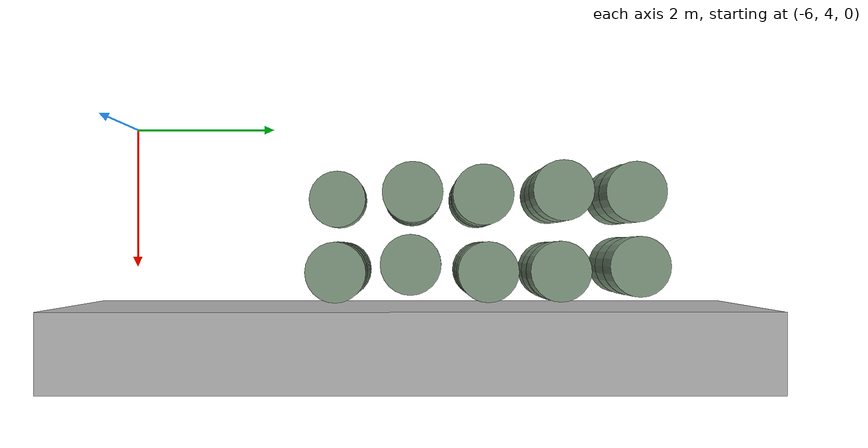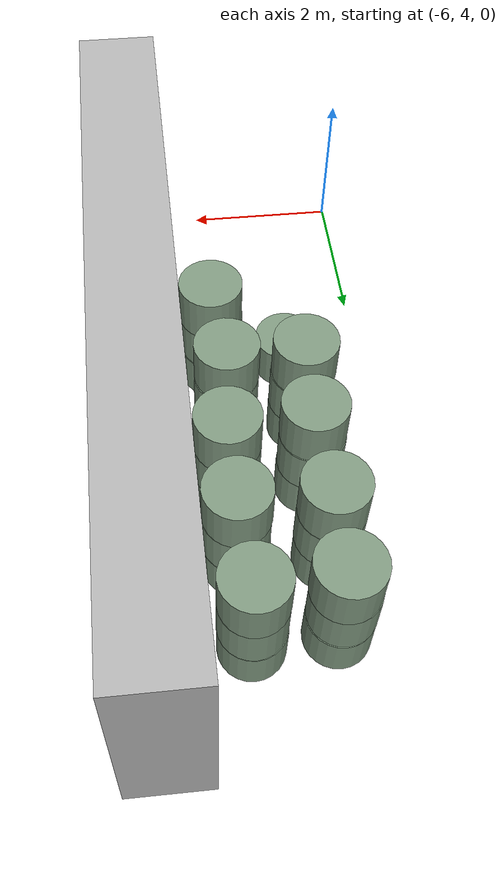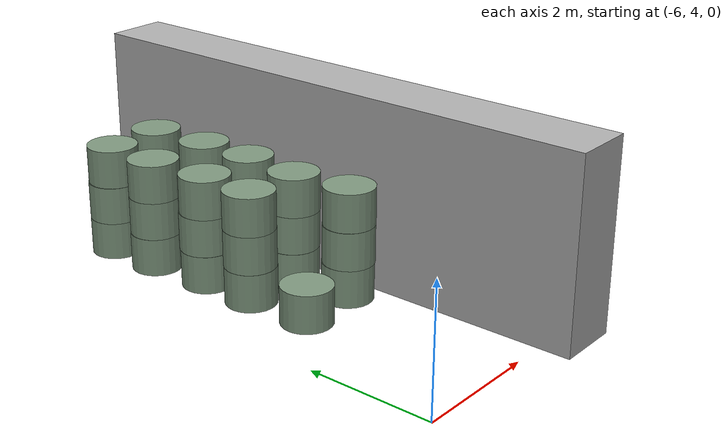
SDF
<sdf version="1.6">
 <world name="default">
  <model name="wall_3">
   <pose frame="sim_world">-3.0 8.0 1.5 0 0 0</pose>
   <static>True</static>
   <link name="wall_3_link">
    <inertial>
     <mass>100</mass>
     <inertia>
      <ixx>0.166667</ixx>
      <ixy>0</ixy>
      <ixz>0</ixz>
      <iyy>0.166667</iyy>
      <iyz>0</iyz>
      <izz>0.166667</izz>
     </inertia>
    </inertial>
    <collision name="wall_3_collision">
     <geometry><box><size>1.0 9.0 3.0</size></box></geometry>
     <max_contacts>100</max_contacts>
    </collision>
    <visual name="wall_3_visual">
     <geometry><box><size>1.0 9.0 3.0</size></box></geometry>
     <material><ambient>0.7 0.7 0.7 1</ambient><diffuse>0.7 0.7 0.7 1</diffuse></material>
    </visual>
   </link>
  </model>
  <model name="cylinder_81">
   <pose frame="sim_world">-4.9603061503 6.96653866494 0.3 0 -0 0</pose>
   <static>True</static>
   <link name="cylinder_81_link">
    <inertial>
     <mass>100</mass>
     <inertia><ixx>0.145833</ixx><ixy>0</ixy><ixz>0</ixz><iyy>0.145833</iyy><iyz>0</iyz><izz>0.125</izz></inertia>
    </inertial>
    <collision name="cylinder_81_collision">
     <geometry><cylinder><length>0.6</length><radius>0.4</radius></cylinder></geometry>
     <max_contacts>100</max_contacts>
    </collision>
    <visual name="cylinder_81_visual">
     <geometry><cylinder><length>0.6</length><radius>0.4</radius></cylinder></geometry>
     <material><ambient>0.5 0.6 0.5 1</ambient><diffuse>0.5 0.6 0.5 1</diffuse></material>
    </visual>
   </link>
  </model>
  <model name="cylinder_84">
   <pose frame="sim_world">-4.99042980781 8.02958762259 0.3 0 -0 0</pose>
   <static>True</static>
   <link name="cylinder_84_link">
    <inertial>
     <mass>100</mass>
     <inertia><ixx>0.145833</ixx><ixy>0</ixy><ixz>0</ixz><iyy>0.145833</iyy><iyz>0</iyz><izz>0.125</izz></inertia>
    </inertial>
    <collision name="cylinder_84_collision">
     <geometry><cylinder><length>0.6</length><radius>0.4</radius></cylinder></geometry>
     <max_contacts>100</max_contacts>
    </collision>
    <visual name="cylinder_84_visual">
     <geometry><cylinder><length>0.6</length><radius>0.4</radius></cylinder></geometry>
     <material><ambient>0.5 0.6 0.5 1</ambient><diffuse>0.5 0.6 0.5 1</diffuse></material>
    </visual>
   </link>
  </model>
  <model name="cylinder_85">
   <pose frame="sim_world">-4.99214448029 8.03540983763 0.9 0 -0 0</pose>
   <static>True</static>
   <link name="cylinder_85_link">
    <inertial>
     <mass>100</mass>
     <inertia><ixx>0.145833</ixx><ixy>0</ixy><ixz>0</ixz><iyy>0.145833</iyy><iyz>0</iyz><izz>0.125</izz></inertia>
    </inertial>
    <collision name="cylinder_85_collision">
     <geometry><cylinder><length>0.6</length><radius>0.4</radius></cylinder></geometry>
     <max_contacts>100</max_contacts>
    </collision>
    <visual name="cylinder_85_visual">
     <geometry><cylinder><length>0.6</length><radius>0.4</radius></cylinder></geometry>
     <material><ambient>0.5 0.6 0.5 1</ambient><diffuse>0.5 0.6 0.5 1</diffuse></material>
    </visual>
   </link>
  </model>
  <model name="cylinder_86">
   <pose frame="sim_world">-5.00142174995 8.02967293043 1.5 0 -0 0</pose>
   <static>True</static>
   <link name="cylinder_86_link">
    <inertial>
     <mass>100</mass>
     <inertia><ixx>0.145833</ixx><ixy>0</ixy><ixz>0</ixz><iyy>0.145833</iyy><iyz>0</iyz><izz>0.125</izz></inertia>
    </inertial>
    <collision name="cylinder_86_collision">
     <geometry><cylinder><length>0.6</length><radius>0.4</radius></cylinder></geometry>
     <max_contacts>100</max_contacts>
    </collision>
    <visual name="cylinder_86_visual">
     <geometry><cylinder><length>0.6</length><radius>0.4</radius></cylinder></geometry>
     <material><ambient>0.5 0.6 0.5 1</ambient><diffuse>0.5 0.6 0.5 1</diffuse></material>
    </visual>
   </link>
  </model>
  <model name="cylinder_87">
   <pose frame="sim_world">-4.96395935713 8.96027865286 0.3 0 -0 0</pose>
   <static>True</static>
   <link name="cylinder_87_link">
    <inertial>
     <mass>100</mass>
     <inertia><ixx>0.145833</ixx><ixy>0</ixy><ixz>0</ixz><iyy>0.145833</iyy><iyz>0</iyz><izz>0.125</izz></inertia>
    </inertial>
    <collision name="cylinder_87_collision">
     <geometry><cylinder><length>0.6</length><radius>0.4</radius></cylinder></geometry>
     <max_contacts>100</max_contacts>
    </collision>
    <visual name="cylinder_87_visual">
     <geometry><cylinder><length>0.6</length><radius>0.4</radius></cylinder></geometry>
     <material><ambient>0.5 0.6 0.5 1</ambient><diffuse>0.5 0.6 0.5 1</diffuse></material>
    </visual>
   </link>
  </model>
  <model name="cylinder_88">
   <pose frame="sim_world">-4.96952828208 8.9711625489 0.9 0 -0 0</pose>
   <static>True</static>
   <link name="cylinder_88_link">
    <inertial>
     <mass>100</mass>
     <inertia><ixx>0.145833</ixx><ixy>0</ixy><ixz>0</ixz><iyy>0.145833</iyy><iyz>0</iyz><izz>0.125</izz></inertia>
    </inertial>
    <collision name="cylinder_88_collision">
     <geometry><cylinder><length>0.6</length><radius>0.4</radius></cylinder></geometry>
     <max_contacts>100</max_contacts>
    </collision>
    <visual name="cylinder_88_visual">
     <geometry><cylinder><length>0.6</length><radius>0.4</radius></cylinder></geometry>
     <material><ambient>0.5 0.6 0.5 1</ambient><diffuse>0.5 0.6 0.5 1</diffuse></material>
    </visual>
   </link>
  </model>
  <model name="cylinder_89">
   <pose frame="sim_world">-4.96785070713 8.95520015383 1.5 0 -0 0</pose>
   <static>True</static>
   <link name="cylinder_89_link">
    <inertial>
     <mass>100</mass>
     <inertia><ixx>0.145833</ixx><ixy>0</ixy><ixz>0</ixz><iyy>0.145833</iyy><iyz>0</iyz><izz>0.125</izz></inertia>
    </inertial>
    <collision name="cylinder_89_collision">
     <geometry><cylinder><length>0.6</length><radius>0.4</radius></cylinder></geometry>
     <max_contacts>100</max_contacts>
    </collision>
    <visual name="cylinder_89_visual">
     <geometry><cylinder><length>0.6</length><radius>0.4</radius></cylinder></geometry>
     <material><ambient>0.5 0.6 0.5 1</ambient><diffuse>0.5 0.6 0.5 1</diffuse></material>
    </visual>
   </link>
  </model>
  <model name="cylinder_90">
   <pose frame="sim_world">-5.02586074198 10.0094093663 0.3 0 -0 0</pose>
   <static>True</static>
   <link name="cylinder_90_link">
    <inertial>
     <mass>100</mass>
     <inertia><ixx>0.145833</ixx><ixy>0</ixy><ixz>0</ixz><iyy>0.145833</iyy><iyz>0</iyz><izz>0.125</izz></inertia>
    </inertial>
    <collision name="cylinder_90_collision">
     <geometry><cylinder><length>0.6</length><radius>0.4</radius></cylinder></geometry>
     <max_contacts>100</max_contacts>
    </collision>
    <visual name="cylinder_90_visual">
     <geometry><cylinder><length>0.6</length><radius>0.4</radius></cylinder></geometry>
     <material><ambient>0.5 0.6 0.5 1</ambient><diffuse>0.5 0.6 0.5 1</diffuse></material>
    </visual>
   </link>
  </model>
  <model name="cylinder_91">
   <pose frame="sim_world">-5.02139907157 10.0067929229 0.9 0 -0 0</pose>
   <static>True</static>
   <link name="cylinder_91_link">
    <inertial>
     <mass>100</mass>
     <inertia><ixx>0.145833</ixx><ixy>0</ixy><ixz>0</ixz><iyy>0.145833</iyy><iyz>0</iyz><izz>0.125</izz></inertia>
    </inertial>
    <collision name="cylinder_91_collision">
     <geometry><cylinder><length>0.6</length><radius>0.4</radius></cylinder></geometry>
     <max_contacts>100</max_contacts>
    </collision>
    <visual name="cylinder_91_visual">
     <geometry><cylinder><length>0.6</length><radius>0.4</radius></cylinder></geometry>
     <material><ambient>0.5 0.6 0.5 1</ambient><diffuse>0.5 0.6 0.5 1</diffuse></material>
    </visual>
   </link>
  </model>
  <model name="cylinder_92">
   <pose frame="sim_world">-5.02329839927 10.0050397006 1.5 0 -0 0</pose>
   <static>True</static>
   <link name="cylinder_92_link">
    <inertial>
     <mass>100</mass>
     <inertia><ixx>0.145833</ixx><ixy>0</ixy><ixz>0</ixz><iyy>0.145833</iyy><iyz>0</iyz><izz>0.125</izz></inertia>
    </inertial>
    <collision name="cylinder_92_collision">
     <geometry><cylinder><length>0.6</length><radius>0.4</radius></cylinder></geometry>
     <max_contacts>100</max_contacts>
    </collision>
    <visual name="cylinder_92_visual">
     <geometry><cylinder><length>0.6</length><radius>0.4</radius></cylinder></geometry>
     <material><ambient>0.5 0.6 0.5 1</ambient><diffuse>0.5 0.6 0.5 1</diffuse></material>
    </visual>
   </link>
  </model>
  <model name="cylinder_93">
   <pose frame="sim_world">-5.00811001362 10.9638394035 0.3 0 -0 0</pose>
   <static>True</static>
   <link name="cylinder_93_link">
    <inertial>
     <mass>100</mass>
     <inertia><ixx>0.145833</ixx><ixy>0</ixy><ixz>0</ixz><iyy>0.145833</iyy><iyz>0</iyz><izz>0.125</izz></inertia>
    </inertial>
    <collision name="cylinder_93_collision">
     <geometry><cylinder><length>0.6</length><radius>0.4</radius></cylinder></geometry>
     <max_contacts>100</max_contacts>
    </collision>
    <visual name="cylinder_93_visual">
     <geometry><cylinder><length>0.6</length><radius>0.4</radius></cylinder></geometry>
     <material><ambient>0.5 0.6 0.5 1</ambient><diffuse>0.5 0.6 0.5 1</diffuse></material>
    </visual>
   </link>
  </model>
  <model name="cylinder_94">
   <pose frame="sim_world">-5.01562472278 10.9535481426 0.9 0 -0 0</pose>
   <static>True</static>
   <link name="cylinder_94_link">
    <inertial>
     <mass>100</mass>
     <inertia><ixx>0.145833</ixx><ixy>0</ixy><ixz>0</ixz><iyy>0.145833</iyy><iyz>0</iyz><izz>0.125</izz></inertia>
    </inertial>
    <collision name="cylinder_94_collision">
     <geometry><cylinder><length>0.6</length><radius>0.4</radius></cylinder></geometry>
     <max_contacts>100</max_contacts>
    </collision>
    <visual name="cylinder_94_visual">
     <geometry><cylinder><length>0.6</length><radius>0.4</radius></cylinder></geometry>
     <material><ambient>0.5 0.6 0.5 1</ambient><diffuse>0.5 0.6 0.5 1</diffuse></material>
    </visual>
   </link>
  </model>
  <model name="cylinder_95">
   <pose frame="sim_world">-5.00296457537 10.9558457434 1.5 0 -0 0</pose>
   <static>True</static>
   <link name="cylinder_95_link">
    <inertial>
     <mass>100</mass>
     <inertia><ixx>0.145833</ixx><ixy>0</ixy><ixz>0</ixz><iyy>0.145833</iyy><iyz>0</iyz><izz>0.125</izz></inertia>
    </inertial>
    <collision name="cylinder_95_collision">
     <geometry><cylinder><length>0.6</length><radius>0.4</radius></cylinder></geometry>
     <max_contacts>100</max_contacts>
    </collision>
    <visual name="cylinder_95_visual">
     <geometry><cylinder><length>0.6</length><radius>0.4</radius></cylinder></geometry>
     <material><ambient>0.5 0.6 0.5 1</ambient><diffuse>0.5 0.6 0.5 1</diffuse></material>
    </visual>
   </link>
  </model>
  <model name="cylinder_123">
   <pose frame="sim_world">-3.95838101689 7.0306150573 0.3 0 -0 0</pose>
   <static>True</static>
   <link name="cylinder_123_link">
    <inertial>
     <mass>100</mass>
     <inertia><ixx>0.145833</ixx><ixy>0</ixy><ixz>0</ixz><iyy>0.145833</iyy><iyz>0</iyz><izz>0.125</izz></inertia>
    </inertial>
    <collision name="cylinder_123_collision">
     <geometry><cylinder><length>0.6</length><radius>0.4</radius></cylinder></geometry>
     <max_contacts>100</max_contacts>
    </collision>
    <visual name="cylinder_123_visual">
     <geometry><cylinder><length>0.6</length><radius>0.4</radius></cylinder></geometry>
     <material><ambient>0.5 0.6 0.5 1</ambient><diffuse>0.5 0.6 0.5 1</diffuse></material>
    </visual>
   </link>
  </model>
  <model name="cylinder_124">
   <pose frame="sim_world">-3.95784734797 7.01696593172 0.9 0 -0 0</pose>
   <static>True</static>
   <link name="cylinder_124_link">
    <inertial>
     <mass>100</mass>
     <inertia><ixx>0.145833</ixx><ixy>0</ixy><ixz>0</ixz><iyy>0.145833</iyy><iyz>0</iyz><izz>0.125</izz></inertia>
    </inertial>
    <collision name="cylinder_124_collision">
     <geometry><cylinder><length>0.6</length><radius>0.4</radius></cylinder></geometry>
     <max_contacts>100</max_contacts>
    </collision>
    <visual name="cylinder_124_visual">
     <geometry><cylinder><length>0.6</length><radius>0.4</radius></cylinder></geometry>
     <material><ambient>0.5 0.6 0.5 1</ambient><diffuse>0.5 0.6 0.5 1</diffuse></material>
    </visual>
   </link>
  </model>
  <model name="cylinder_125">
   <pose frame="sim_world">-3.94799978859 7.01845542066 1.5 0 -0 0</pose>
   <static>True</static>
   <link name="cylinder_125_link">
    <inertial>
     <mass>100</mass>
     <inertia><ixx>0.145833</ixx><ixy>0</ixy><ixz>0</ixz><iyy>0.145833</iyy><iyz>0</iyz><izz>0.125</izz></inertia>
    </inertial>
    <collision name="cylinder_125_collision">
     <geometry><cylinder><length>0.6</length><radius>0.4</radius></cylinder></geometry>
     <max_contacts>100</max_contacts>
    </collision>
    <visual name="cylinder_125_visual">
     <geometry><cylinder><length>0.6</length><radius>0.4</radius></cylinder></geometry>
     <material><ambient>0.5 0.6 0.5 1</ambient><diffuse>0.5 0.6 0.5 1</diffuse></material>
    </visual>
   </link>
  </model>
  <model name="cylinder_126">
   <pose frame="sim_world">-4.05238511534 8.01998589758 0.3 0 -0 0</pose>
   <static>True</static>
   <link name="cylinder_126_link">
    <inertial>
     <mass>100</mass>
     <inertia><ixx>0.145833</ixx><ixy>0</ixy><ixz>0</ixz><iyy>0.145833</iyy><iyz>0</iyz><izz>0.125</izz></inertia>
    </inertial>
    <collision name="cylinder_126_collision">
     <geometry><cylinder><length>0.6</length><radius>0.4</radius></cylinder></geometry>
     <max_contacts>100</max_contacts>
    </collision>
    <visual name="cylinder_126_visual">
     <geometry><cylinder><length>0.6</length><radius>0.4</radius></cylinder></geometry>
     <material><ambient>0.5 0.6 0.5 1</ambient><diffuse>0.5 0.6 0.5 1</diffuse></material>
    </visual>
   </link>
  </model>
  <model name="cylinder_127">
   <pose frame="sim_world">-4.04416479167 8.02118141945 0.9 0 -0 0</pose>
   <static>True</static>
   <link name="cylinder_127_link">
    <inertial>
     <mass>100</mass>
     <inertia><ixx>0.145833</ixx><ixy>0</ixy><ixz>0</ixz><iyy>0.145833</iyy><iyz>0</iyz><izz>0.125</izz></inertia>
    </inertial>
    <collision name="cylinder_127_collision">
     <geometry><cylinder><length>0.6</length><radius>0.4</radius></cylinder></geometry>
     <max_contacts>100</max_contacts>
    </collision>
    <visual name="cylinder_127_visual">
     <geometry><cylinder><length>0.6</length><radius>0.4</radius></cylinder></geometry>
     <material><ambient>0.5 0.6 0.5 1</ambient><diffuse>0.5 0.6 0.5 1</diffuse></material>
    </visual>
   </link>
  </model>
  <model name="cylinder_128">
   <pose frame="sim_world">-4.04903602831 8.00291125708 1.5 0 -0 0</pose>
   <static>True</static>
   <link name="cylinder_128_link">
    <inertial>
     <mass>100</mass>
     <inertia><ixx>0.145833</ixx><ixy>0</ixy><ixz>0</ixz><iyy>0.145833</iyy><iyz>0</iyz><izz>0.125</izz></inertia>
    </inertial>
    <collision name="cylinder_128_collision">
     <geometry><cylinder><length>0.6</length><radius>0.4</radius></cylinder></geometry>
     <max_contacts>100</max_contacts>
    </collision>
    <visual name="cylinder_128_visual">
     <geometry><cylinder><length>0.6</length><radius>0.4</radius></cylinder></geometry>
     <material><ambient>0.5 0.6 0.5 1</ambient><diffuse>0.5 0.6 0.5 1</diffuse></material>
    </visual>
   </link>
  </model>
  <model name="cylinder_129">
   <pose frame="sim_world">-3.96156919588 9.01612701155 0.3 0 -0 0</pose>
   <static>True</static>
   <link name="cylinder_129_link">
    <inertial>
     <mass>100</mass>
     <inertia><ixx>0.145833</ixx><ixy>0</ixy><ixz>0</ixz><iyy>0.145833</iyy><iyz>0</iyz><izz>0.125</izz></inertia>
    </inertial>
    <collision name="cylinder_129_collision">
     <geometry><cylinder><length>0.6</length><radius>0.4</radius></cylinder></geometry>
     <max_contacts>100</max_contacts>
    </collision>
    <visual name="cylinder_129_visual">
     <geometry><cylinder><length>0.6</length><radius>0.4</radius></cylinder></geometry>
     <material><ambient>0.5 0.6 0.5 1</ambient><diffuse>0.5 0.6 0.5 1</diffuse></material>
    </visual>
   </link>
  </model>
  <model name="cylinder_130">
   <pose frame="sim_world">-3.953727257 9.02297085337 0.9 0 -0 0</pose>
   <static>True</static>
   <link name="cylinder_130_link">
    <inertial>
     <mass>100</mass>
     <inertia><ixx>0.145833</ixx><ixy>0</ixy><ixz>0</ixz><iyy>0.145833</iyy><iyz>0</iyz><izz>0.125</izz></inertia>
    </inertial>
    <collision name="cylinder_130_collision">
     <geometry><cylinder><length>0.6</length><radius>0.4</radius></cylinder></geometry>
     <max_contacts>100</max_contacts>
    </collision>
    <visual name="cylinder_130_visual">
     <geometry><cylinder><length>0.6</length><radius>0.4</radius></cylinder></geometry>
     <material><ambient>0.5 0.6 0.5 1</ambient><diffuse>0.5 0.6 0.5 1</diffuse></material>
    </visual>
   </link>
  </model>
  <model name="cylinder_131">
   <pose frame="sim_world">-3.95373959113 9.02199145212 1.5 0 -0 0</pose>
   <static>True</static>
   <link name="cylinder_131_link">
    <inertial>
     <mass>100</mass>
     <inertia><ixx>0.145833</ixx><ixy>0</ixy><ixz>0</ixz><iyy>0.145833</iyy><iyz>0</iyz><izz>0.125</izz></inertia>
    </inertial>
    <collision name="cylinder_131_collision">
     <geometry><cylinder><length>0.6</length><radius>0.4</radius></cylinder></geometry>
     <max_contacts>100</max_contacts>
    </collision>
    <visual name="cylinder_131_visual">
     <geometry><cylinder><length>0.6</length><radius>0.4</radius></cylinder></geometry>
     <material><ambient>0.5 0.6 0.5 1</ambient><diffuse>0.5 0.6 0.5 1</diffuse></material>
    </visual>
   </link>
  </model>
  <model name="cylinder_132">
   <pose frame="sim_world">-3.95959020477 9.97420812348 0.3 0 -0 0</pose>
   <static>True</static>
   <link name="cylinder_132_link">
    <inertial>
     <mass>100</mass>
     <inertia><ixx>0.145833</ixx><ixy>0</ixy><ixz>0</ixz><iyy>0.145833</iyy><iyz>0</iyz><izz>0.125</izz></inertia>
    </inertial>
    <collision name="cylinder_132_collision">
     <geometry><cylinder><length>0.6</length><radius>0.4</radius></cylinder></geometry>
     <max_contacts>100</max_contacts>
    </collision>
    <visual name="cylinder_132_visual">
     <geometry><cylinder><length>0.6</length><radius>0.4</radius></cylinder></geometry>
     <material><ambient>0.5 0.6 0.5 1</ambient><diffuse>0.5 0.6 0.5 1</diffuse></material>
    </visual>
   </link>
  </model>
  <model name="cylinder_133">
   <pose frame="sim_world">-3.95277957887 9.96386765481 0.9 0 -0 0</pose>
   <static>True</static>
   <link name="cylinder_133_link">
    <inertial>
     <mass>100</mass>
     <inertia><ixx>0.145833</ixx><ixy>0</ixy><ixz>0</ixz><iyy>0.145833</iyy><iyz>0</iyz><izz>0.125</izz></inertia>
    </inertial>
    <collision name="cylinder_133_collision">
     <geometry><cylinder><length>0.6</length><radius>0.4</radius></cylinder></geometry>
     <max_contacts>100</max_contacts>
    </collision>
    <visual name="cylinder_133_visual">
     <geometry><cylinder><length>0.6</length><radius>0.4</radius></cylinder></geometry>
     <material><ambient>0.5 0.6 0.5 1</ambient><diffuse>0.5 0.6 0.5 1</diffuse></material>
    </visual>
   </link>
  </model>
  <model name="cylinder_134">
   <pose frame="sim_world">-3.96056724738 9.97085512297 1.5 0 -0 0</pose>
   <static>True</static>
   <link name="cylinder_134_link">
    <inertial>
     <mass>100</mass>
     <inertia><ixx>0.145833</ixx><ixy>0</ixy><ixz>0</ixz><iyy>0.145833</iyy><iyz>0</iyz><izz>0.125</izz></inertia>
    </inertial>
    <collision name="cylinder_134_collision">
     <geometry><cylinder><length>0.6</length><radius>0.4</radius></cylinder></geometry>
     <max_contacts>100</max_contacts>
    </collision>
    <visual name="cylinder_134_visual">
     <geometry><cylinder><length>0.6</length><radius>0.4</radius></cylinder></geometry>
     <material><ambient>0.5 0.6 0.5 1</ambient><diffuse>0.5 0.6 0.5 1</diffuse></material>
    </visual>
   </link>
  </model>
  <model name="cylinder_135">
   <pose frame="sim_world">-4.02651928567 11.0126697968 0.3 0 -0 0</pose>
   <static>True</static>
   <link name="cylinder_135_link">
    <inertial>
     <mass>100</mass>
     <inertia><ixx>0.145833</ixx><ixy>0</ixy><ixz>0</ixz><iyy>0.145833</iyy><iyz>0</iyz><izz>0.125</izz></inertia>
    </inertial>
    <collision name="cylinder_135_collision">
     <geometry><cylinder><length>0.6</length><radius>0.4</radius></cylinder></geometry>
     <max_contacts>100</max_contacts>
    </collision>
    <visual name="cylinder_135_visual">
     <geometry><cylinder><length>0.6</length><radius>0.4</radius></cylinder></geometry>
     <material><ambient>0.5 0.6 0.5 1</ambient><diffuse>0.5 0.6 0.5 1</diffuse></material>
    </visual>
   </link>
  </model>
  <model name="cylinder_136">
   <pose frame="sim_world">-4.02071172608 11.0066525826 0.9 0 -0 0</pose>
   <static>True</static>
   <link name="cylinder_136_link">
    <inertial>
     <mass>100</mass>
     <inertia><ixx>0.145833</ixx><ixy>0</ixy><ixz>0</ixz><iyy>0.145833</iyy><iyz>0</iyz><izz>0.125</izz></inertia>
    </inertial>
    <collision name="cylinder_136_collision">
     <geometry><cylinder><length>0.6</length><radius>0.4</radius></cylinder></geometry>
     <max_contacts>100</max_contacts>
    </collision>
    <visual name="cylinder_136_visual">
     <geometry><cylinder><length>0.6</length><radius>0.4</radius></cylinder></geometry>
     <material><ambient>0.5 0.6 0.5 1</ambient><diffuse>0.5 0.6 0.5 1</diffuse></material>
    </visual>
   </link>
  </model>
  <model name="cylinder_137">
   <pose frame="sim_world">-4.02309636792 11.0078791604 1.5 0 -0 0</pose>
   <static>True</static>
   <link name="cylinder_137_link">
    <inertial>
     <mass>100</mass>
     <inertia><ixx>0.145833</ixx><ixy>0</ixy><ixz>0</ixz><iyy>0.145833</iyy><iyz>0</iyz><izz>0.125</izz></inertia>
    </inertial>
    <collision name="cylinder_137_collision">
     <geometry><cylinder><length>0.6</length><radius>0.4</radius></cylinder></geometry>
     <max_contacts>100</max_contacts>
    </collision>
    <visual name="cylinder_137_visual">
     <geometry><cylinder><length>0.6</length><radius>0.4</radius></cylinder></geometry>
     <material><ambient>0.5 0.6 0.5 1</ambient><diffuse>0.5 0.6 0.5 1</diffuse></material>
    </visual>
   </link>
  </model>
  <model name="ground_plane"><link name="ground_plane"/></model>
 </world>
</sdf>
